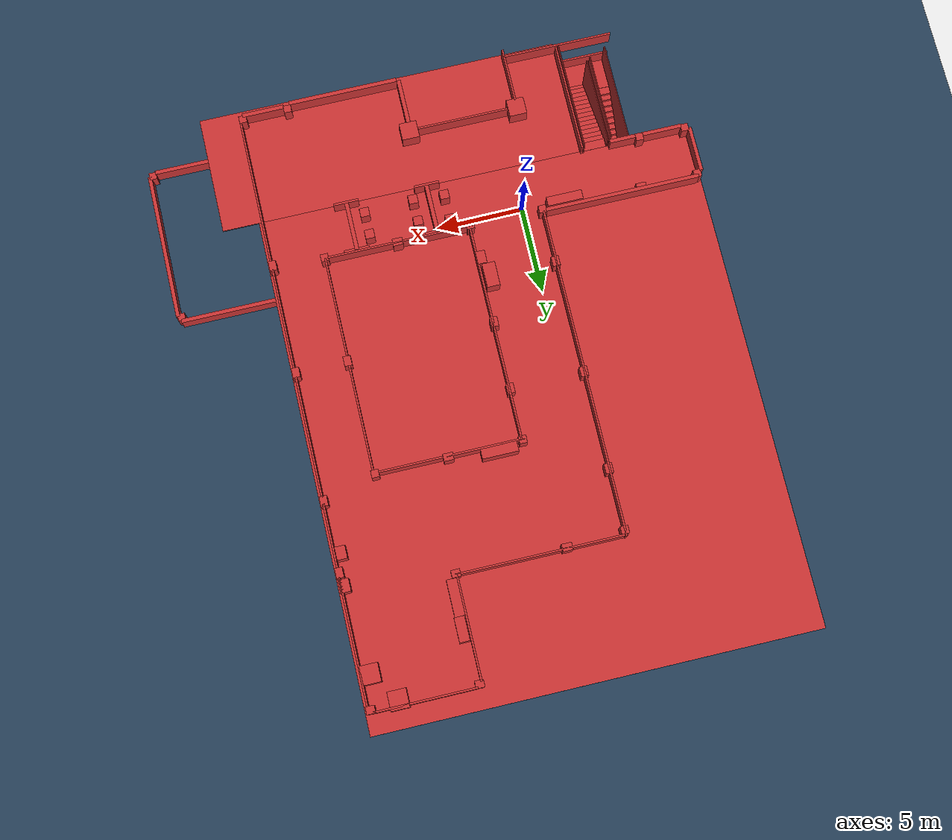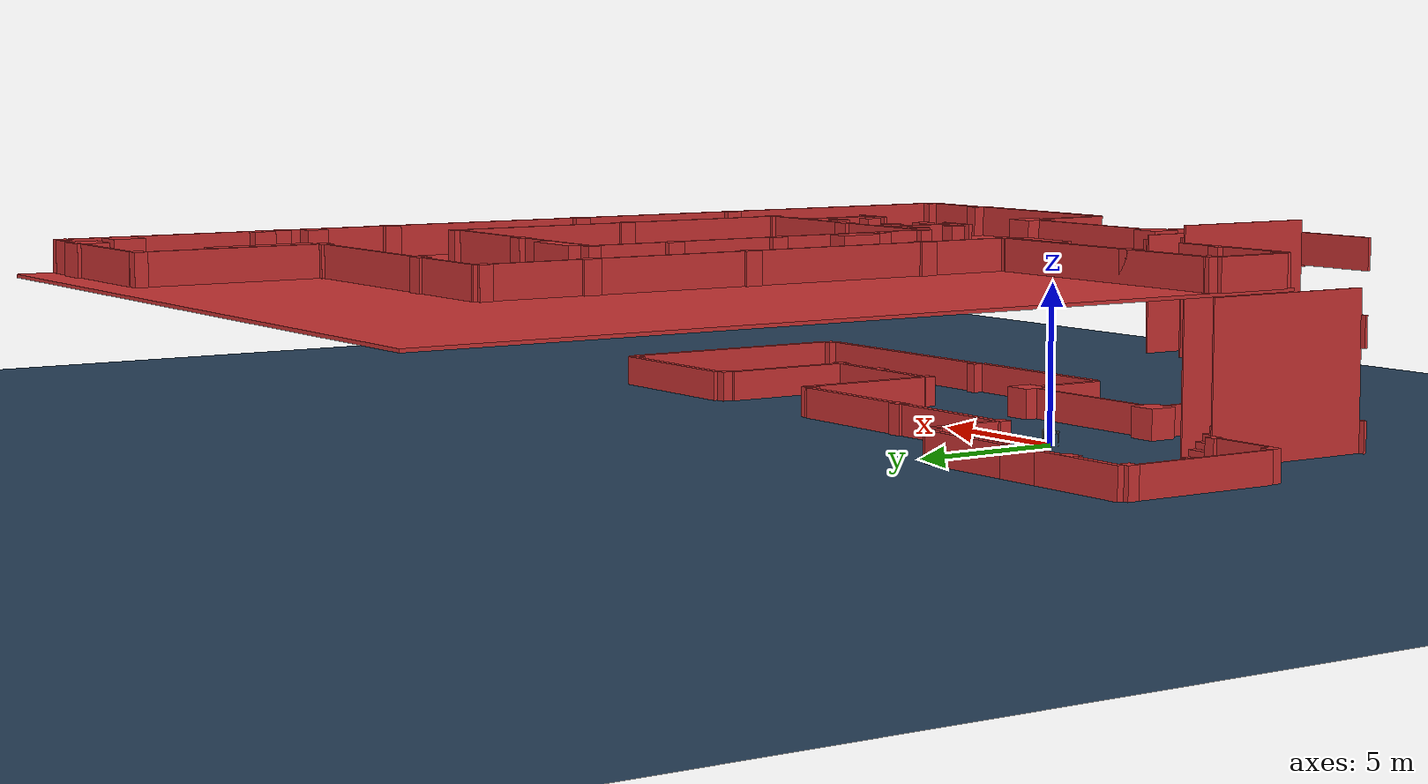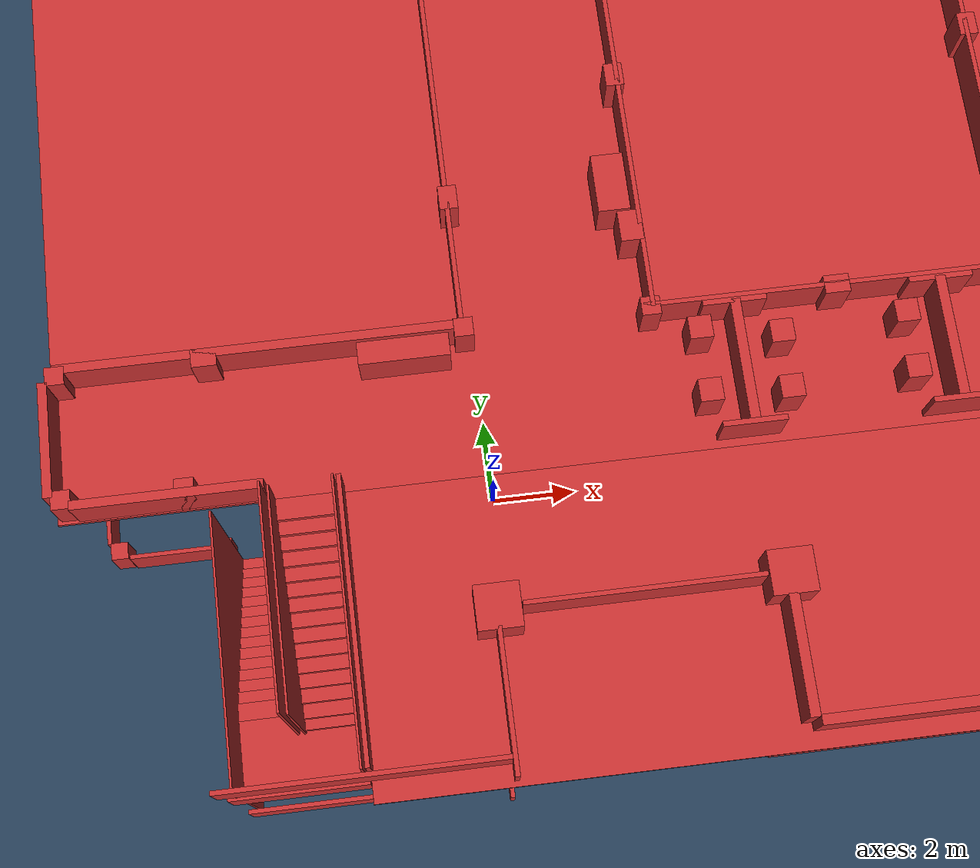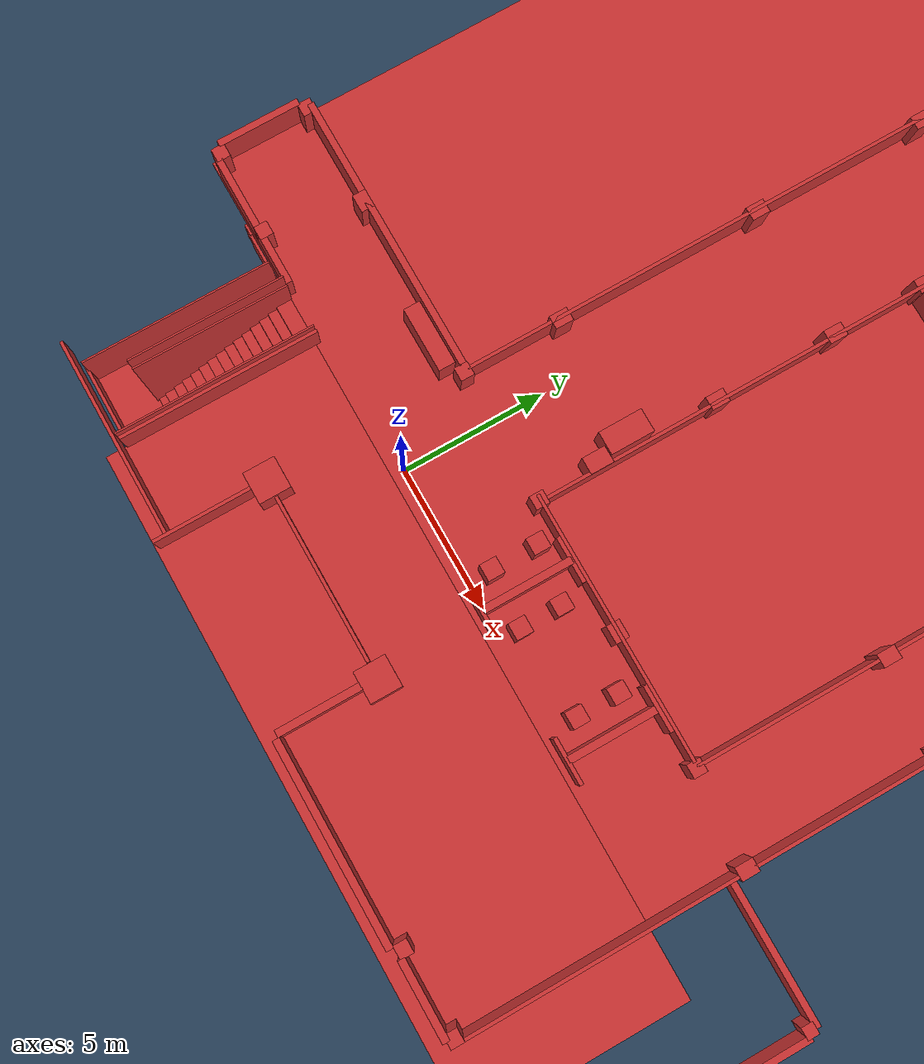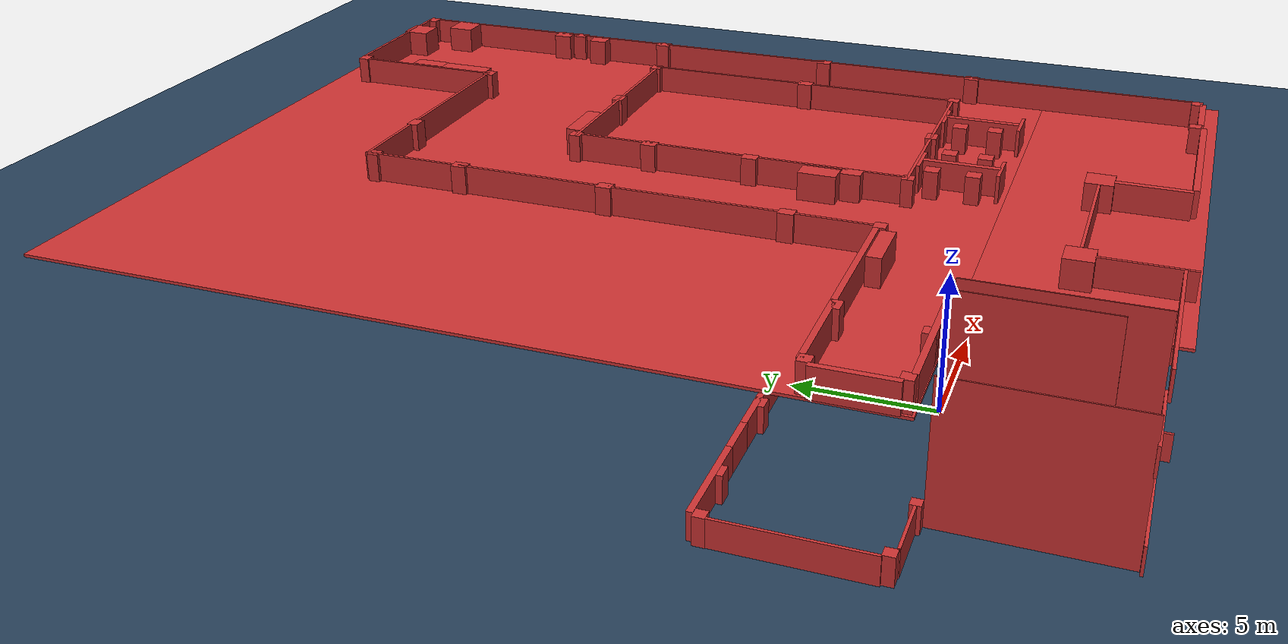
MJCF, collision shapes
<mujoco model="go2 scene">
  <include file="go2.xml" />
  <statistic center="0 0 0.1" extent="0.8" />

  <visual>
    <headlight diffuse="0.6 0.6 0.6" ambient="0.3 0.3 0.3" specular="0 0 0" />
    <rgba haze="0.15 0.25 0.35 1" />
    <global azimuth="-130" elevation="-20" />
    <map znear="0.01" zfar="100"/>
  </visual>

  <asset>
    <texture type="skybox" builtin="gradient" rgb1="0.3 0.5 0.7" rgb2="0 0 0" width="512" height="3072" />
    <texture type="2d" name="groundplane" builtin="checker" mark="edge" rgb1="0.2 0.3 0.4" rgb2="0.1 0.2 0.3" markrgb="0.8 0.8 0.8" width="300" height="300" />
    <material name="groundplane" texture="groundplane" texuniform="true" texrepeat="5 5" reflectance="0.2" />
  <hfield name="perlin_hfield" size="1.0 0.75 0.2 0.2" file="../height_field.png" /><hfield name="image_hfield" size="1.0 1.0 0.02 0.1" file="../unitree_hfield.png" /></asset>

  <worldbody>
    <light pos="0 0 1.5" dir="0 0 -1" directional="true" />
    <geom name="floor" pos="0 0.0 0.001" size="0 0 0.05" type="plane" material="groundplane" />
<geom name="phs_Cube" type="box" size="0.475 0.475 0.5" pos="-0.4 -3.8 0.5" quat="1.0 0.0 0.0 0.0" rgba="0.8 0.2 0.2 1" solref="0.02 1" solimp="0.9 0.95 0.001"/>
<geom name="phs_Cube2" type="box" size="0.475 0.475 0.5" pos="5.6 -3.8 0.5" quat="1.0 0.0 0.0 0.0" rgba="0.8 0.2 0.2 1" solref="0.02 1" solimp="0.9 0.95 0.001"/>
<geom name="phs_Cube3" type="box" size="2.5 0.05 0.5" pos="2.6 -3.8 0.5" quat="1.0 0.0 0.0 0.0" rgba="0.8 0.2 0.2 1" solref="0.02 1" solimp="0.9 0.95 0.001"/>
<geom name="phs_Cube4" type="box" size="0.05 1.5 0.5" pos="-0.43 -5.7 0.5" quat="1.0 0.0 0.0 0.0" rgba="0.8 0.2 0.2 1" solref="0.02 1" solimp="0.9 0.95 0.001"/>
<geom name="phs_Cube5" type="box" size="0.05 3.0 0.5" pos="-3.43 -6.8 0.5" quat="0.707107 0.0 0.0 0.707107" rgba="0.8 0.2 0.2 1" solref="0.02 1" solimp="0.9 0.95 0.001"/>
<geom name="phs_Cube6" type="box" size="0.025 3.0 2.5" pos="-6.22 -3.74 2.5" quat="1.0 0.0 0.0 -0.0" rgba="0.8 0.2 0.2 1" solref="0.02 1" solimp="0.9 0.95 0.001"/>
<geom name="phs_Cube7" type="box" size="0.18 0.18 0.5" pos="-6.5 -0.57 0.5" quat="1.0 0.0 0.0 0.0" rgba="0.8 0.2 0.2 1" solref="0.02 1" solimp="0.9 0.95 0.001"/>
<geom name="phs_Cube8" type="box" size="0.2 0.2 0.5" pos="-8.98 -0.39 0.5" quat="1.0 0.0 0.0 0.0" rgba="0.8 0.2 0.2 1" solref="0.02 1" solimp="0.9 0.95 0.001"/>
<geom name="phs_Cube9" type="box" size="1.05 0.05 0.5" pos="-7.7 -0.57 0.5" quat="1.0 0.0 0.0 0.0" rgba="0.8 0.2 0.2 1" solref="0.02 1" solimp="0.9 0.95 0.001"/>
<geom name="phs_Cube10" type="box" size="2.5 0.05 0.5" pos="-9.2 2.29 0.5" quat="0.707107 0.0 0.0 -0.707107" rgba="0.8 0.2 0.2 1" solref="0.02 1" solimp="0.9 0.95 0.001"/>
<geom name="phs_Cube11" type="box" size="0.2 0.2 0.5" pos="-9.07 4.98 0.5" quat="1.0 0.0 0.0 0.0" rgba="0.8 0.2 0.2 1" solref="0.02 1" solimp="0.9 0.95 0.001"/>
<geom name="phs_Cube12" type="box" size="0.27 0.2 0.5" pos="-6.89 5.18 0.5" quat="1.0 0.0 0.0 0.0" rgba="0.8 0.2 0.2 1" solref="0.02 1" solimp="0.9 0.95 0.001"/>
<geom name="phs_Cube13" type="box" size="1.75 0.11 0.5" pos="-7.35 5.3 0.5" quat="1.0 0.0 0.0 0.0" rgba="0.8 0.2 0.2 1" solref="0.02 1" solimp="0.9 0.95 0.001"/>
<geom name="phs_Cube14" type="box" size="1.75 0.11 0.5" pos="-2.45 5.3 0.5" quat="1.0 0.0 0.0 0.0" rgba="0.8 0.2 0.2 1" solref="0.02 1" solimp="0.9 0.95 0.001"/>
<geom name="phs_Cube15" type="box" size="0.27 0.2 0.5" pos="-2.9 5.18 0.5" quat="1.0 0.0 0.0 0.0" rgba="0.8 0.2 0.2 1" solref="0.02 1" solimp="0.9 0.95 0.001"/>
<geom name="phs_Cube16" type="box" size="0.2 0.2 0.5" pos="-0.51 4.98 0.5" quat="1.0 0.0 0.0 0.0" rgba="0.8 0.2 0.2 1" solref="0.02 1" solimp="0.9 0.95 0.001"/>
<geom name="phs_Cube17" type="box" size="1.25 0.11 0.5" pos="-0.3 3.65 0.5" quat="0.707107 0.0 0.0 -0.707107" rgba="0.8 0.2 0.2 1" solref="0.02 1" solimp="0.9 0.95 0.001"/>
<geom name="phs_Cube18" type="box" size="0.205 0.2 0.5" pos="-0.29 2.18 0.5" quat="1.0 0.0 0.0 0.0" rgba="0.8 0.2 0.2 1" solref="0.02 1" solimp="0.9 0.95 0.001"/>
<geom name="phs_Cube19" type="box" size="4.75 0.11 0.5" pos="4.66 2.29 0.5" quat="1.0 0.0 0.0 0.0" rgba="0.8 0.2 0.2 1" solref="0.02 1" solimp="0.9 0.95 0.001"/>
<geom name="phs_Cube20" type="box" size="0.27 0.2 0.5" pos="4.6 2.29 0.5" quat="1.0 0.0 0.0 0.0" rgba="0.8 0.2 0.2 1" solref="0.02 1" solimp="0.9 0.95 0.001"/>
<geom name="phs_Cube21" type="box" size="0.75 0.11 0.5" pos="-4.9 5.3 0.5" quat="1.0 0.0 0.0 0.0" rgba="0.8 0.2 0.2 1" solref="0.02 1" solimp="0.9 0.95 0.001"/>
<geom name="phs_Cube22" type="box" size="2.5 0.11 0.5" pos="9.69 -0.16 0.5" quat="0.707107 0.0 0.0 -0.707107" rgba="0.8 0.2 0.2 1" solref="0.02 1" solimp="0.9 0.95 0.001"/>
<geom name="phs_Cube23" type="box" size="0.205 0.2 0.5" pos="9.61 2.08 0.5" quat="1.0 0.0 0.0 0.0" rgba="0.8 0.2 0.2 1" solref="0.02 1" solimp="0.9 0.95 0.001"/>
<geom name="phs_Cube24" type="box" size="0.205 0.2 0.5" pos="9.71 -2.81 0.5" quat="1.0 0.0 0.0 0.0" rgba="0.8 0.2 0.2 1" solref="0.02 1" solimp="0.9 0.95 0.001"/>
<geom name="phs_Cube25" type="box" size="0.27 0.2 0.5" pos="12.39 -2.81 0.5" quat="1.0 0.0 0.0 0.0" rgba="0.8 0.2 0.2 1" solref="0.02 1" solimp="0.9 0.95 0.001"/>
<geom name="phs_Cube26" type="box" size="0.205 0.2 0.5" pos="14.6 -2.81 0.5" quat="1.0 0.0 0.0 0.0" rgba="0.8 0.2 0.2 1" solref="0.02 1" solimp="0.9 0.95 0.001"/>
<geom name="phs_Cube27" type="box" size="0.205 0.2 0.5" pos="14.7 2.06 0.5" quat="1.0 0.0 0.0 0.0" rgba="0.8 0.2 0.2 1" solref="0.02 1" solimp="0.9 0.95 0.001"/>
<geom name="phs_Cube28" type="box" size="0.205 0.2 0.5" pos="20.3 2.06 0.5" quat="1.0 0.0 0.0 0.0" rgba="0.8 0.2 0.2 1" solref="0.02 1" solimp="0.9 0.95 0.001"/>
<geom name="phs_Cube29" type="box" size="0.205 0.2 0.5" pos="20.3 -6.53 0.5" quat="1.0 0.0 0.0 0.0" rgba="0.8 0.2 0.2 1" solref="0.02 1" solimp="0.9 0.95 0.001"/>
<geom name="phs_Cube30" type="box" size="0.205 0.2 0.5" pos="11.8 -6.58 0.5" quat="1.0 0.0 0.0 0.0" rgba="0.8 0.2 0.2 1" solref="0.02 1" solimp="0.9 0.95 0.001"/>
<geom name="phs_Cube31" type="box" size="2.25 0.11 0.5" pos="12.15 -2.71 0.5" quat="1.0 0.0 0.0 0.0" rgba="0.8 0.2 0.2 1" solref="0.02 1" solimp="0.9 0.95 0.001"/>
<geom name="phs_Cube32" type="box" size="2.25 0.11 0.5" pos="14.5 -0.37 0.5" quat="0.707107 0.0 0.0 0.707107" rgba="0.8 0.2 0.2 1" solref="0.02 1" solimp="0.9 0.95 0.001"/>
<geom name="phs_Cube33" type="box" size="2.75 0.11 0.5" pos="17.6 2.3 0.5" quat="1.0 0.0 0.0 -0.0" rgba="0.8 0.2 0.2 1" solref="0.02 1" solimp="0.9 0.95 0.001"/>
<geom name="phs_Cube34" type="box" size="4.25 0.11 0.5" pos="20.49 -2.25 0.5" quat="0.707107 0.0 0.0 -0.707107" rgba="0.8 0.2 0.2 1" solref="0.02 1" solimp="0.9 0.95 0.001"/>
<geom name="phs_Cube35" type="box" size="4.25 0.11 0.5" pos="15.89 -6.7 0.5" quat="0.0 0.0 0.0 -1.0" rgba="0.8 0.2 0.2 1" solref="0.02 1" solimp="0.9 0.95 0.001"/>
<geom name="phs_Cube36" type="box" size="3.0 0.11 0.5" pos="8.65 -6.83 0.5" quat="0.0 0.0 0.0 -1.0" rgba="0.8 0.2 0.2 1" solref="0.02 1" solimp="0.9 0.95 0.001"/>
<geom name="phs_Cube37" type="box" size="1.25 0.11 0.5" pos="5.54 -5.51 0.5" quat="0.707107 0.0 0.0 0.707107" rgba="0.8 0.2 0.2 1" solref="0.02 1" solimp="0.9 0.95 0.001"/>
<geom name="phs_Cube38" type="box" size="0.025 2.35 3.5" pos="-4.92 -3.13 3.5" quat="1.0 0.0 0.0 0.0" rgba="0.8 0.2 0.2 1" solref="0.02 1" solimp="0.9 0.95 0.001"/>
<geom name="phs_Cube39" type="box" size="0.025 2.35 1.75" pos="-4.78 -3.13 4.89" quat="1.0 0.0 0.0 0.0" rgba="0.8 0.2 0.2 1" solref="0.02 1" solimp="0.9 0.95 0.001"/>
<geom name="phs_Cube40" type="box" size="0.025 3.0 1.75" pos="-3.45 -3.7 4.89" quat="1.0 0.0 0.0 0.0" rgba="0.8 0.2 0.2 1" solref="0.02 1" solimp="0.9 0.95 0.001"/>
<geom name="phs_Cube41" type="box" size="0.05 1.5 0.5" pos="-4.93 -6.75 3.68" quat="0.707107 0.0 0.0 0.707107" rgba="0.8 0.2 0.2 1" solref="0.02 1" solimp="0.9 0.95 0.001"/>
<geom name="phs_Cube42" type="box" size="0.475 0.475 0.5" pos="-0.4 -3.8 6.0" quat="1.0 0.0 0.0 0.0" rgba="0.8 0.2 0.2 1" solref="0.02 1" solimp="0.9 0.95 0.001"/>
<geom name="phs_Cube43" type="box" size="0.475 0.475 0.5" pos="5.6 -3.8 6.0" quat="1.0 0.0 0.0 0.0" rgba="0.8 0.2 0.2 1" solref="0.02 1" solimp="0.9 0.95 0.001"/>
<geom name="phs_Cube44" type="box" size="2.5 0.05 0.5" pos="2.6 -3.8 6.0" quat="1.0 0.0 0.0 0.0" rgba="0.8 0.2 0.2 1" solref="0.02 1" solimp="0.9 0.95 0.001"/>
<geom name="phs_Cube45" type="box" size="0.05 1.5 0.5" pos="-0.43 -5.7 6.0" quat="1.0 0.0 0.0 0.0" rgba="0.8 0.2 0.2 1" solref="0.02 1" solimp="0.9 0.95 0.001"/>
<geom name="phs_Cube46" type="box" size="0.05 3.0 0.5" pos="-3.43 -6.8 6.0" quat="0.707107 0.0 0.0 0.707107" rgba="0.8 0.2 0.2 1" solref="0.02 1" solimp="0.9 0.95 0.001"/>
<geom name="phs_Cube47" type="box" size="0.205 0.2 0.5" pos="11.8 -6.53 6.0" quat="1.0 0.0 0.0 0.0" rgba="0.8 0.2 0.2 1" solref="0.02 1" solimp="0.9 0.95 0.001"/>
<geom name="phs_Cube48" type="box" size="1.15 0.11 0.5" pos="13.13 -6.7 6.0" quat="0.0 0.0 0.0 -1.0" rgba="0.8 0.2 0.2 1" solref="0.02 1" solimp="0.9 0.95 0.001"/>
<geom name="phs_Cube49" type="box" size="3.0 0.11 0.5" pos="8.65 -6.83 6.0" quat="0.0 0.0 0.0 -1.0" rgba="0.8 0.2 0.2 1" solref="0.02 1" solimp="0.9 0.95 0.001"/>
<geom name="phs_Cube50" type="box" size="1.25 0.11 0.5" pos="5.54 -5.51 6.0" quat="0.707107 0.0 0.0 0.707107" rgba="0.8 0.2 0.2 1" solref="0.02 1" solimp="0.9 0.95 0.001"/>
<geom name="phs_Cube51" type="box" size="0.205 0.2 0.5" pos="14.29 -6.49 6.0" quat="1.0 0.0 0.0 0.0" rgba="0.8 0.2 0.2 1" solref="0.02 1" solimp="0.9 0.95 0.001"/>
<geom name="phs_Cube52" type="box" size="0.205 0.2 0.5" pos="-6.5 -0.59 6.0" quat="1.0 0.0 0.0 0.0" rgba="0.8 0.2 0.2 1" solref="0.02 1" solimp="0.9 0.95 0.001"/>
<geom name="phs_Cube53" type="box" size="0.205 0.2 0.5" pos="-9.03 -0.55 6.0" quat="1.0 0.0 0.0 0.0" rgba="0.8 0.2 0.2 1" solref="0.02 1" solimp="0.9 0.95 0.001"/>
<geom name="phs_Cube54" type="box" size="0.205 0.2 0.5" pos="-9.03 2.14 6.0" quat="1.0 0.0 0.0 0.0" rgba="0.8 0.2 0.2 1" solref="0.02 1" solimp="0.9 0.95 0.001"/>
<geom name="phs_Cube55" type="box" size="0.1 1.25 0.5" pos="-9.29 0.77 6.0" quat="1.0 0.0 0.0 0.0" rgba="0.8 0.2 0.2 1" solref="0.02 1" solimp="0.9 0.95 0.001"/>
<geom name="phs_Cube56" type="box" size="0.1 4.25 0.5" pos="-4.82 2.28 6.0" quat="0.707107 0.0 0.0 -0.707107" rgba="0.8 0.2 0.2 1" solref="0.02 1" solimp="0.9 0.95 0.001"/>
<geom name="phs_Cube57" type="box" size="0.27 0.2 0.5" pos="-5.9 2.18 6.0" quat="1.0 0.0 0.0 0.0" rgba="0.8 0.2 0.2 1" solref="0.02 1" solimp="0.9 0.95 0.001"/>
<geom name="phs_Cube58" type="box" size="0.205 0.205 0.5" pos="-0.4 2.2 6.0" quat="1.0 0.0 0.0 0.0" rgba="0.8 0.2 0.2 1" solref="0.02 1" solimp="0.9 0.95 0.001"/>
<geom name="phs_Cube59" type="box" size="0.05 3.0 0.5" pos="-3.33 -3.68 6.0" quat="1.0 0.0 0.0 0.0" rgba="0.8 0.2 0.2 1" solref="0.02 1" solimp="0.9 0.95 0.001"/>
<geom name="phs_Cube60" type="box" size="0.1 2.0 0.5" pos="-6.87 -0.69 6.0" quat="0.707107 0.0 0.0 0.707107" rgba="0.8 0.2 0.2 1" solref="0.02 1" solimp="0.9 0.95 0.001"/>
<geom name="phs_Cube61" type="box" size="0.27 0.2 0.5" pos="-0.39 5.2 6.0" quat="0.707107 0.0 0.0 0.707107" rgba="0.8 0.2 0.2 1" solref="0.02 1" solimp="0.9 0.95 0.001"/>
<geom name="phs_Cube62" type="box" size="0.27 0.2 0.5" pos="-0.39 11.4 6.0" quat="0.707107 0.0 0.0 0.707107" rgba="0.8 0.2 0.2 1" solref="0.02 1" solimp="0.9 0.95 0.001"/>
<geom name="phs_Cube63" type="box" size="0.27 0.2 0.5" pos="-0.39 16.7 6.0" quat="0.707107 0.0 0.0 0.707107" rgba="0.8 0.2 0.2 1" solref="0.02 1" solimp="0.9 0.95 0.001"/>
<geom name="phs_Cube64" type="box" size="0.205 0.205 0.5" pos="3.6 2.2 6.0" quat="1.0 0.0 0.0 0.0" rgba="0.8 0.2 0.2 1" solref="0.02 1" solimp="0.9 0.95 0.001"/>
<geom name="phs_Cube65" type="box" size="0.27 0.2 0.5" pos="3.59 7.7 6.0" quat="0.707107 0.0 0.0 0.707107" rgba="0.8 0.2 0.2 1" solref="0.02 1" solimp="0.9 0.95 0.001"/>
<geom name="phs_Cube66" type="box" size="0.27 0.2 0.5" pos="3.59 11.4 6.0" quat="0.707107 0.0 0.0 0.707107" rgba="0.8 0.2 0.2 1" solref="0.02 1" solimp="0.9 0.95 0.001"/>
<geom name="phs_Cube67" type="box" size="0.27 0.2 0.5" pos="2.7 20.18 6.0" quat="0.0 0.0 0.0 1.0" rgba="0.8 0.2 0.2 1" solref="0.02 1" solimp="0.9 0.95 0.001"/>
<geom name="phs_Cube68" type="box" size="0.205 0.205 0.5" pos="3.6 14.2 6.0" quat="1.0 0.0 0.0 0.0" rgba="0.8 0.2 0.2 1" solref="0.02 1" solimp="0.9 0.95 0.001"/>
<geom name="phs_Cube69" type="box" size="0.205 0.205 0.5" pos="-0.4 20.0 6.0" quat="1.0 0.0 0.0 0.0" rgba="0.8 0.2 0.2 1" solref="0.02 1" solimp="0.9 0.95 0.001"/>
<geom name="phs_Cube70" type="box" size="0.235 0.2 0.5" pos="8.58 20.19 6.0" quat="1.0 0.0 0.0 0.0" rgba="0.8 0.2 0.2 1" solref="0.02 1" solimp="0.9 0.95 0.001"/>
<geom name="phs_Cube71" type="box" size="0.27 0.2 0.5" pos="7.59 14.21 6.0" quat="0.0 0.0 0.0 1.0" rgba="0.8 0.2 0.2 1" solref="0.02 1" solimp="0.9 0.95 0.001"/>
<geom name="phs_Cube72" type="box" size="0.205 0.205 0.5" pos="11.5 14.2 6.0" quat="1.0 0.0 0.0 0.0" rgba="0.8 0.2 0.2 1" solref="0.02 1" solimp="0.9 0.95 0.001"/>
<geom name="phs_Cube73" type="box" size="0.235 0.2 0.5" pos="8.67 25.89 6.0" quat="1.0 0.0 0.0 0.0" rgba="0.8 0.2 0.2 1" solref="0.02 1" solimp="0.9 0.95 0.001"/>
<geom name="phs_Cube74" type="box" size="0.27 0.2 0.5" pos="11.61 8.01 6.0" quat="0.707107 0.0 0.0 0.707107" rgba="0.8 0.2 0.2 1" solref="0.02 1" solimp="0.9 0.95 0.001"/>
<geom name="phs_Cube75" type="box" size="0.27 0.2 0.5" pos="14.39 2.0 6.0" quat="0.707107 0.0 0.0 0.707107" rgba="0.8 0.2 0.2 1" solref="0.02 1" solimp="0.9 0.95 0.001"/>
<geom name="phs_Cube76" type="box" size="0.27 0.2 0.5" pos="14.39 8.01 6.0" quat="0.707107 0.0 0.0 0.707107" rgba="0.8 0.2 0.2 1" solref="0.02 1" solimp="0.9 0.95 0.001"/>
<geom name="phs_Cube77" type="box" size="0.27 0.2 0.5" pos="7.6 2.22 6.0" quat="1.0 0.0 0.0 0.0" rgba="0.8 0.2 0.2 1" solref="0.02 1" solimp="0.9 0.95 0.001"/>
<geom name="phs_Cube78" type="box" size="0.205 0.205 0.5" pos="11.6 2.2 6.0" quat="1.0 0.0 0.0 0.0" rgba="0.8 0.2 0.2 1" solref="0.02 1" solimp="0.9 0.95 0.001"/>
<geom name="phs_Cube79" type="box" size="0.27 0.2 0.5" pos="14.39 15.0 6.0" quat="0.707107 0.0 0.0 0.707107" rgba="0.8 0.2 0.2 1" solref="0.02 1" solimp="0.9 0.95 0.001"/>
<geom name="phs_Cube80" type="box" size="0.27 0.2 0.5" pos="14.39 18.8 6.0" quat="0.707107 0.0 0.0 0.707107" rgba="0.8 0.2 0.2 1" solref="0.02 1" solimp="0.9 0.95 0.001"/>
<geom name="phs_Cube81" type="box" size="6.0 0.05 0.5" pos="3.65 8.19 6.0" quat="0.707107 0.0 0.0 -0.707107" rgba="0.8 0.2 0.2 1" solref="0.02 1" solimp="0.9 0.95 0.001"/>
<geom name="phs_Cube82" type="box" size="9.0 0.05 0.5" pos="-0.43 11.33 6.0" quat="0.707107 0.0 0.0 -0.707107" rgba="0.8 0.2 0.2 1" solref="0.02 1" solimp="0.9 0.95 0.001"/>
<geom name="phs_Cube83" type="box" size="4.0 0.05 0.5" pos="7.45 14.16 6.0" quat="0.0 0.0 0.0 -1.0" rgba="0.8 0.2 0.2 1" solref="0.02 1" solimp="0.9 0.95 0.001"/>
<geom name="phs_Cube84" type="box" size="4.5 0.05 0.5" pos="4.14 20.25 6.0" quat="0.0 0.0 0.0 -1.0" rgba="0.8 0.2 0.2 1" solref="0.02 1" solimp="0.9 0.95 0.001"/>
<geom name="phs_Cube85" type="box" size="2.75 0.05 0.5" pos="8.55 23.05 6.0" quat="0.707107 0.0 0.0 -0.707107" rgba="0.8 0.2 0.2 1" solref="0.02 1" solimp="0.9 0.95 0.001"/>
<geom name="phs_Cube86" type="box" size="0.235 0.2 0.5" pos="14.32 25.89 6.0" quat="1.0 0.0 0.0 0.0" rgba="0.8 0.2 0.2 1" solref="0.02 1" solimp="0.9 0.95 0.001"/>
<geom name="phs_Cube87" type="box" size="2.75 0.05 0.5" pos="11.55 26.05 6.0" quat="0.0 0.0 0.0 -1.0" rgba="0.8 0.2 0.2 1" solref="0.02 1" solimp="0.9 0.95 0.001"/>
<geom name="phs_Cube88" type="box" size="16.0 0.05 0.5" pos="14.44 9.72 6.0" quat="0.707107 0.0 0.0 -0.707107" rgba="0.8 0.2 0.2 1" solref="0.02 1" solimp="0.9 0.95 0.001"/>
<geom name="phs_Cube89" type="box" size="6.0 0.05 0.5" pos="11.57 8.23 6.0" quat="0.707107 0.0 0.0 -0.707107" rgba="0.8 0.2 0.2 1" solref="0.02 1" solimp="0.9 0.95 0.001"/>
<geom name="phs_Cube90" type="box" size="4.0 0.05 0.5" pos="7.45 2.23 6.0" quat="0.0 0.0 0.0 -1.0" rgba="0.8 0.2 0.2 1" solref="0.02 1" solimp="0.9 0.95 0.001"/>
<geom name="phs_Cube91" type="box" size="10.0 0.05 3.25" pos="6.67 -4.07 5.46" quat="0.707107 -0.707107 0.0 0.0" rgba="0.8 0.2 0.2 1" solref="0.02 1" solimp="0.9 0.95 0.001"/>
<geom name="phs_Cube92" type="box" size="12.0 0.05 14.0" pos="2.67 13.18 5.46" quat="0.707107 -0.707107 0.0 0.0" rgba="0.8 0.2 0.2 1" solref="0.02 1" solimp="0.9 0.95 0.001"/>
<geom name="phs_Cube93" type="box" size="0.975 0.25 0.5" pos="-1.71 1.87 6.0" quat="1.0 0.0 0.0 0.0" rgba="0.8 0.2 0.2 1" solref="0.02 1" solimp="0.9 0.95 0.001"/>
<geom name="phs_Cube94" type="box" size="0.66 0.35 0.5" pos="3.15 5.13 6.0" quat="0.707107 0.0 0.0 -0.707107" rgba="0.8 0.2 0.2 1" solref="0.02 1" solimp="0.9 0.95 0.001"/>
<geom name="phs_Cube95" type="box" size="0.35 0.25 0.5" pos="3.44 4.08 6.0" quat="0.707107 0.0 0.0 -0.707107" rgba="0.8 0.2 0.2 1" solref="0.02 1" solimp="0.9 0.95 0.001"/>
<geom name="phs_Cube96" type="box" size="0.975 0.275 0.5" pos="4.91 14.47 6.0" quat="0.0 0.0 0.0 -1.0" rgba="0.8 0.2 0.2 1" solref="0.02 1" solimp="0.9 0.95 0.001"/>
<geom name="phs_Cube97" type="box" size="0.975 0.275 0.5" pos="8.87 21.39 6.0" quat="0.707107 0.0 0.0 -0.707107" rgba="0.8 0.2 0.2 1" solref="0.02 1" solimp="0.9 0.95 0.001"/>
<geom name="phs_Cube98" type="box" size="0.65 0.275 0.5" pos="8.92 23.02 6.0" quat="0.707107 0.0 0.0 -0.707107" rgba="0.8 0.2 0.2 1" solref="0.02 1" solimp="0.9 0.95 0.001"/>
<geom name="phs_Cube99" type="box" size="0.35 0.275 0.5" pos="14.27 19.5 6.0" quat="0.707107 0.0 0.0 -0.707107" rgba="0.8 0.2 0.2 1" solref="0.02 1" solimp="0.9 0.95 0.001"/>
<geom name="phs_Cube100" type="box" size="0.35 0.275 0.5" pos="14.09 17.81 6.0" quat="0.707107 0.0 0.0 -0.707107" rgba="0.8 0.2 0.2 1" solref="0.02 1" solimp="0.9 0.95 0.001"/>
<geom name="phs_Cube101" type="box" size="0.5 0.5 0.5" pos="13.96 24.14 6.0" quat="0.707107 0.0 0.0 -0.707107" rgba="0.8 0.2 0.2 1" solref="0.02 1" solimp="0.9 0.95 0.001"/>
<geom name="phs_Cube102" type="box" size="0.5 0.5 0.5" pos="12.84 25.71 6.0" quat="0.707107 0.0 0.0 -0.707107" rgba="0.8 0.2 0.2 1" solref="0.02 1" solimp="0.9 0.95 0.001"/>
<geom name="phs_Cube103" type="box" size="1.35 0.11 0.5" pos="5.39 0.79 6.0" quat="0.707107 0.0 0.0 -0.707107" rgba="0.8 0.2 0.2 1" solref="0.02 1" solimp="0.9 0.95 0.001"/>
<geom name="phs_Cube104" type="box" size="0.685 0.06 0.5" pos="5.38 2.12 6.0" quat="1.0 0.0 0.0 0.0" rgba="0.8 0.2 0.2 1" solref="0.02 1" solimp="0.9 0.95 0.001"/>
<geom name="phs_Cube105" type="box" size="0.685 0.06 0.5" pos="9.83 -0.58 6.0" quat="1.0 0.0 0.0 0.0" rgba="0.8 0.2 0.2 1" solref="0.02 1" solimp="0.9 0.95 0.001"/>
<geom name="phs_Cube106" type="box" size="0.685 0.06 0.5" pos="9.82 2.12 6.0" quat="1.0 0.0 0.0 0.0" rgba="0.8 0.2 0.2 1" solref="0.02 1" solimp="0.9 0.95 0.001"/>
<geom name="phs_Cube107" type="box" size="1.35 0.11 0.5" pos="9.81 0.79 6.0" quat="0.707107 0.0 0.0 -0.707107" rgba="0.8 0.2 0.2 1" solref="0.02 1" solimp="0.9 0.95 0.001"/>
<geom name="phs_Cube108" type="box" size="0.25 0.25 0.5" pos="4.57 1.6 6.0" quat="1.0 0.0 0.0 0.0" rgba="0.8 0.2 0.2 1" solref="0.02 1" solimp="0.9 0.95 0.001"/>
<geom name="phs_Cube109" type="box" size="0.25 0.25 0.5" pos="4.57 0.2 6.0" quat="1.0 0.0 0.0 0.0" rgba="0.8 0.2 0.2 1" solref="0.02 1" solimp="0.9 0.95 0.001"/>
<geom name="phs_Cube110" type="box" size="0.25 0.25 0.5" pos="8.97 0.2 6.0" quat="1.0 0.0 0.0 0.0" rgba="0.8 0.2 0.2 1" solref="0.02 1" solimp="0.9 0.95 0.001"/>
<geom name="phs_Cube111" type="box" size="0.25 0.25 0.5" pos="8.97 1.45 6.0" quat="1.0 0.0 0.0 0.0" rgba="0.8 0.2 0.2 1" solref="0.02 1" solimp="0.9 0.95 0.001"/>
<geom name="phs_Cube112" type="box" size="0.25 0.25 0.5" pos="6.27 0.08 6.0" quat="1.0 0.0 0.0 0.0" rgba="0.8 0.2 0.2 1" solref="0.02 1" solimp="0.9 0.95 0.001"/>
<geom name="phs_Cube113" type="box" size="0.25 0.25 0.5" pos="6.27 1.32 6.0" quat="1.0 0.0 0.0 0.0" rgba="0.8 0.2 0.2 1" solref="0.02 1" solimp="0.9 0.95 0.001"/>
<geom name="phs_Cube114" type="box" size="0.65 0.2 0.105" pos="-5.57 -0.96 0.1" quat="1.0 0.0 0.0 0.0" rgba="0.8 0.2 0.2 1" solref="0.02 1" solimp="0.9 0.95 0.001"/>
<geom name="phs_Cube115" type="box" size="0.65 0.2 0.105" pos="-5.57 -1.25 0.32" quat="1.0 0.0 0.0 0.0" rgba="0.8 0.2 0.2 1" solref="0.02 1" solimp="0.9 0.95 0.001"/>
<geom name="phs_Cube116" type="box" size="0.65 0.2 0.105" pos="-5.57 -1.52 0.53" quat="1.0 0.0 0.0 0.0" rgba="0.8 0.2 0.2 1" solref="0.02 1" solimp="0.9 0.95 0.001"/>
<geom name="phs_Cube117" type="box" size="0.65 0.2 0.105" pos="-5.57 -1.8 0.74" quat="1.0 0.0 0.0 0.0" rgba="0.8 0.2 0.2 1" solref="0.02 1" solimp="0.9 0.95 0.001"/>
<geom name="phs_Cube118" type="box" size="0.65 0.2 0.105" pos="-5.57 -2.07 0.95" quat="1.0 0.0 0.0 0.0" rgba="0.8 0.2 0.2 1" solref="0.02 1" solimp="0.9 0.95 0.001"/>
<geom name="phs_Cube119" type="box" size="0.65 0.2 0.105" pos="-5.57 -2.35 1.17" quat="1.0 0.0 0.0 0.0" rgba="0.8 0.2 0.2 1" solref="0.02 1" solimp="0.9 0.95 0.001"/>
<geom name="phs_Cube120" type="box" size="0.65 0.2 0.105" pos="-5.57 -2.63 1.38" quat="1.0 0.0 0.0 0.0" rgba="0.8 0.2 0.2 1" solref="0.02 1" solimp="0.9 0.95 0.001"/>
<geom name="phs_Cube121" type="box" size="0.65 0.2 0.105" pos="-5.57 -2.91 1.59" quat="1.0 0.0 0.0 0.0" rgba="0.8 0.2 0.2 1" solref="0.02 1" solimp="0.9 0.95 0.001"/>
<geom name="phs_Cube122" type="box" size="0.65 0.2 0.105" pos="-5.57 -3.18 1.8" quat="1.0 0.0 0.0 0.0" rgba="0.8 0.2 0.2 1" solref="0.02 1" solimp="0.9 0.95 0.001"/>
<geom name="phs_Cube123" type="box" size="0.65 0.2 0.105" pos="-5.57 -3.46 2.02" quat="1.0 0.0 0.0 0.0" rgba="0.8 0.2 0.2 1" solref="0.02 1" solimp="0.9 0.95 0.001"/>
<geom name="phs_Cube124" type="box" size="0.65 0.2 0.105" pos="-5.57 -3.74 2.23" quat="1.0 0.0 0.0 0.0" rgba="0.8 0.2 0.2 1" solref="0.02 1" solimp="0.9 0.95 0.001"/>
<geom name="phs_Cube125" type="box" size="0.65 0.2 0.105" pos="-5.57 -4.02 2.44" quat="1.0 0.0 0.0 0.0" rgba="0.8 0.2 0.2 1" solref="0.02 1" solimp="0.9 0.95 0.001"/>
<geom name="phs_Cube126" type="box" size="0.65 0.2 0.105" pos="-5.57 -4.29 2.65" quat="1.0 0.0 0.0 0.0" rgba="0.8 0.2 0.2 1" solref="0.02 1" solimp="0.9 0.95 0.001"/>
<geom name="phs_Cube127" type="box" size="0.65 0.2 0.105" pos="-5.57 -4.57 2.86" quat="1.0 0.0 0.0 0.0" rgba="0.8 0.2 0.2 1" solref="0.02 1" solimp="0.9 0.95 0.001"/>
<geom name="phs_Cube128" type="box" size="0.65 0.2 0.105" pos="-5.57 -4.85 3.075" quat="1.0 0.0 0.0 0.0" rgba="0.8 0.2 0.2 1" solref="0.02 1" solimp="0.9 0.95 0.001"/>
<geom name="phs_Cube129" type="box" size="1.4 0.85 0.105" pos="-4.84 -5.89 3.11" quat="1.0 0.0 0.0 0.0" rgba="0.8 0.2 0.2 1" solref="0.02 1" solimp="0.9 0.95 0.001"/>
<geom name="phs_Cube130" type="box" size="0.65 0.2 0.105" pos="-4.12 -5.22 3.27" quat="1.0 0.0 0.0 0.0" rgba="0.8 0.2 0.2 1" solref="0.02 1" solimp="0.9 0.95 0.001"/>
<geom name="phs_Cube131" type="box" size="0.65 0.2 0.105" pos="-4.12 -4.99 3.42" quat="1.0 0.0 0.0 0.0" rgba="0.8 0.2 0.2 1" solref="0.02 1" solimp="0.9 0.95 0.001"/>
<geom name="phs_Cube132" type="box" size="0.65 0.2 0.105" pos="-4.12 -4.68 3.58" quat="1.0 0.0 0.0 0.0" rgba="0.8 0.2 0.2 1" solref="0.02 1" solimp="0.9 0.95 0.001"/>
<geom name="phs_Cube133" type="box" size="0.65 0.2 0.105" pos="-4.12 -4.38 3.73" quat="1.0 0.0 0.0 0.0" rgba="0.8 0.2 0.2 1" solref="0.02 1" solimp="0.9 0.95 0.001"/>
<geom name="phs_Cube134" type="box" size="0.65 0.2 0.105" pos="-4.12 -4.08 3.88" quat="1.0 0.0 0.0 0.0" rgba="0.8 0.2 0.2 1" solref="0.02 1" solimp="0.9 0.95 0.001"/>
<geom name="phs_Cube135" type="box" size="0.65 0.2 0.105" pos="-4.12 -3.775 4.04" quat="1.0 0.0 0.0 0.0" rgba="0.8 0.2 0.2 1" solref="0.02 1" solimp="0.9 0.95 0.001"/>
<geom name="phs_Cube136" type="box" size="0.65 0.2 0.105" pos="-4.12 -3.475 4.19" quat="1.0 0.0 0.0 0.0" rgba="0.8 0.2 0.2 1" solref="0.02 1" solimp="0.9 0.95 0.001"/>
<geom name="phs_Cube137" type="box" size="0.65 0.2 0.105" pos="-4.12 -3.175 4.34" quat="1.0 0.0 0.0 0.0" rgba="0.8 0.2 0.2 1" solref="0.02 1" solimp="0.9 0.95 0.001"/>
<geom name="phs_Cube138" type="box" size="0.65 0.2 0.105" pos="-4.12 -2.865 4.5" quat="1.0 0.0 0.0 0.0" rgba="0.8 0.2 0.2 1" solref="0.02 1" solimp="0.9 0.95 0.001"/>
<geom name="phs_Cube139" type="box" size="0.65 0.2 0.105" pos="-4.12 -2.57 4.65" quat="1.0 0.0 0.0 0.0" rgba="0.8 0.2 0.2 1" solref="0.02 1" solimp="0.9 0.95 0.001"/>
<geom name="phs_Cube140" type="box" size="0.65 0.2 0.105" pos="-4.12 -2.268 4.8" quat="1.0 0.0 0.0 0.0" rgba="0.8 0.2 0.2 1" solref="0.02 1" solimp="0.9 0.95 0.001"/>
<geom name="phs_Cube141" type="box" size="0.65 0.2 0.105" pos="-4.12 -1.97 4.955" quat="1.0 0.0 0.0 0.0" rgba="0.8 0.2 0.2 1" solref="0.02 1" solimp="0.9 0.95 0.001"/>
<geom name="phs_Cube142" type="box" size="0.65 0.2 0.105" pos="-4.12 -1.66 5.11" quat="1.0 0.0 0.0 0.0" rgba="0.8 0.2 0.2 1" solref="0.02 1" solimp="0.9 0.95 0.001"/>
<geom name="phs_Cube143" type="box" size="0.65 0.2 0.105" pos="-4.12 -1.36 5.265" quat="1.0 0.0 0.0 0.0" rgba="0.8 0.2 0.2 1" solref="0.02 1" solimp="0.9 0.95 0.001"/>
<geom name="phs_Cube144" type="box" size="0.65 0.235 0.105" pos="-4.12 -1.03 5.415" quat="1.0 0.0 0.0 0.0" rgba="0.8 0.2 0.2 1" solref="0.02 1" solimp="0.9 0.95 0.001"/>
<geom name="phs_Cube145" type="box" size="0.685 0.06 0.5" pos="5.38 -0.58 6.0" quat="1.0 0.0 0.0 0.0" rgba="0.8 0.2 0.2 1" solref="0.02 1" solimp="0.9 0.95 0.001"/>
    </worldbody>
</mujoco>

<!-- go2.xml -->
<mujoco model="go2">
  <compiler angle="radian" meshdir="assets" autolimits="true" />

  <option cone="elliptic" impratio="100" />

  <default>
    <default class="go2">
      <geom friction="0.4" margin="0.001" condim="1"/>
      <joint axis="0 1 0" damping="0.1" armature="0.01" frictionloss="0.2"/>
      <motor ctrlrange="-23.7 23.7"/>
      <default class="abduction">
        <joint axis="1 0 0" range="-1.0472 1.0472"/>
      </default>
      <default class="hip">
        <default class="front_hip">
          <joint range="-1.5708 3.4907"/>
        </default>
        <default class="back_hip">
          <joint range="-0.5236 4.5379"/>
        </default>
      </default>
      <default class="knee">
        <joint range="-2.7227 -0.83776"/>
        <motor ctrlrange="-45.43 45.43"/>
      </default>
      <default class="visual">
        <geom type="mesh" contype="0" conaffinity="0" group="2"/>
      </default>
      <default class="collision">
        <geom group="3"/>
        <default class="foot">
          <geom size="0.022" pos="-0.002 0 -0.213" priority="1" condim="6"
            friction="0.4 0.02 0.01"/>
        </default>
      </default>
    </default>
  </default>

  <asset>
    <material name="metal" rgba=".9 .95 .95 1" />
    <material name="black" rgba="0 0 0 1" />
    <material name="white" rgba="1 1 1 1" />
    <material name="gray" rgba="0.671705 0.692426 0.774270 1" />

    <mesh file="base_0.obj" />
    <mesh file="base_1.obj" />
    <mesh file="base_2.obj" />
    <mesh file="base_3.obj" />
    <mesh file="base_4.obj" />
    <mesh file="hip_0.obj" />
    <mesh file="hip_1.obj" />
    <mesh file="thigh_0.obj" />
    <mesh file="thigh_1.obj" />
    <mesh file="thigh_mirror_0.obj" />
    <mesh file="thigh_mirror_1.obj" />
    <mesh file="calf_0.obj" />
    <mesh file="calf_1.obj" />
    <mesh file="calf_mirror_0.obj" />
    <mesh file="calf_mirror_1.obj" />
    <mesh file="foot.obj" />
  </asset>

  <worldbody>
    <body name="base_link" pos="0 0 0.445" childclass="go2">
      <inertial pos="0.021112 0 -0.005366" quat="-0.000543471 0.713435 -0.00173769 0.700719"
        mass="6.921"
        diaginertia="0.107027 0.0980771 0.0244531" />
      <freejoint />
      <geom mesh="base_0" material="black" class="visual" />
      <geom mesh="base_1" material="black" class="visual" />
      <geom mesh="base_2" material="black" class="visual" />
      <geom mesh="base_3" material="white" class="visual" />
      <geom mesh="base_4" material="gray" class="visual" />
      <geom size="0.1881 0.04675 0.057" type="box" class="collision" />
      <geom size="0.05 0.045" pos="0.285 0 0.01" type="cylinder" class="collision" />
      <geom size="0.047" pos="0.293 0 -0.06" class="collision" />
      <site name="imu" pos="-0.02557 0 0.04232" />

      <body name="FL_hip" pos="0.1934 0.0465 0">
        <inertial pos="-0.0054 0.00194 -0.000105" quat="0.497014 0.499245 0.505462 0.498237"
          mass="0.678"
          diaginertia="0.00088403 0.000596003 0.000479967" />
        <joint name="FL_hip_joint" class="abduction" />
        <geom mesh="hip_0" material="metal" class="visual" />
        <geom mesh="hip_1" material="gray" class="visual" />
        <geom size="0.046 0.02" pos="0 0.08 0" quat="1 1 0 0" type="cylinder" class="collision" />
        <body name="FL_thigh" pos="0 0.0955 0">
          <inertial pos="-0.00374 -0.0223 -0.0327" quat="0.829533 0.0847635 -0.0200632 0.551623"
            mass="1.152"
            diaginertia="0.00594973 0.00584149 0.000878787" />
          <joint name="FL_thigh_joint" class="front_hip" />
          <geom mesh="thigh_0" material="metal" class="visual" />
          <geom mesh="thigh_1" material="gray" class="visual" />
          <geom size="0.1065 0.01225 0.017" pos="0 0 -0.1065" quat="0.707107 0 0.707107 0"
            type="box" class="collision" />
          <body name="FL_calf" pos="0 0 -0.213">
            <inertial pos="0.00629595 -0.000622121 -0.141417"
              quat="0.710672 0.00154099 -0.00450087 0.703508"
              mass="0.241352" diaginertia="0.0014901 0.00146356 5.31397e-05" />
            <joint name="FL_calf_joint" class="knee" />
            <geom mesh="calf_0" material="gray" class="visual" />
            <geom mesh="calf_1" material="black" class="visual" />
            <geom size="0.012 0.06" pos="0.008 0 -0.06" quat="0.994493 0 -0.104807 0"
              type="cylinder" class="collision" />
            <geom size="0.011 0.0325" pos="0.02 0 -0.148" quat="0.999688 0 0.0249974 0"
              type="cylinder" class="collision" />
            <geom pos="0 0 -0.213" mesh="foot" class="visual" material="black" />
            <geom name="FL" class="foot" />
            <body name="FL_foot" pos="0 0 -0.213" />
          </body>
        </body>
      </body>
      <body name="FR_hip" pos="0.1934 -0.0465 0">
        <inertial pos="-0.0054 -0.00194 -0.000105" quat="0.498237 0.505462 0.499245 0.497014"
          mass="0.678"
          diaginertia="0.00088403 0.000596003 0.000479967" />
        <joint name="FR_hip_joint" class="abduction" />
        <geom mesh="hip_0" material="metal" class="visual" quat="4.63268e-05 1 0 0" />
        <geom mesh="hip_1" material="gray" class="visual" quat="4.63268e-05 1 0 0" />
        <geom size="0.046 0.02" pos="0 -0.08 0" quat="0.707107 0.707107 0 0" type="cylinder"
          class="collision" />
        <body name="FR_thigh" pos="0 -0.0955 0">
          <inertial pos="-0.00374 0.0223 -0.0327" quat="0.551623 -0.0200632 0.0847635 0.829533"
            mass="1.152"
            diaginertia="0.00594973 0.00584149 0.000878787" />
          <joint name="FR_thigh_joint" class="front_hip" />
          <geom mesh="thigh_mirror_0" material="metal" class="visual" />
          <geom mesh="thigh_mirror_1" material="gray" class="visual" />
          <geom size="0.1065 0.01225 0.017" pos="0 0 -0.1065" quat="0.707107 0 0.707107 0"
            type="box" class="collision" />
          <body name="FR_calf" pos="0 0 -0.213">
            <inertial pos="0.00629595 0.000622121 -0.141417"
              quat="0.703508 -0.00450087 0.00154099 0.710672"
              mass="0.241352" diaginertia="0.0014901 0.00146356 5.31397e-05" />
            <joint name="FR_calf_joint" class="knee" />
            <geom mesh="calf_mirror_0" material="gray" class="visual" />
            <geom mesh="calf_mirror_1" material="black" class="visual" />
            <geom size="0.013 0.06" pos="0.01 0 -0.06" quat="0.995004 0 -0.0998334 0"
              type="cylinder" class="collision" />
            <geom size="0.011 0.0325" pos="0.02 0 -0.148" quat="0.999688 0 0.0249974 0"
              type="cylinder" class="collision" />
            <geom pos="0 0 -0.213" mesh="foot" class="visual" material="black" />
            <geom name="FR" class="foot" />
            <body name="FR_foot" pos="0 0 -0.213" />
          </body>
        </body>
      </body>
      <body name="RL_hip" pos="-0.1934 0.0465 0">
        <inertial pos="0.0054 0.00194 -0.000105" quat="0.505462 0.498237 0.497014 0.499245"
          mass="0.678"
          diaginertia="0.00088403 0.000596003 0.000479967" />
        <joint name="RL_hip_joint" class="abduction" />
        <geom mesh="hip_0" material="metal" class="visual" quat="4.63268e-05 0 1 0" />
        <geom mesh="hip_1" material="gray" class="visual" quat="4.63268e-05 0 1 0" />
        <geom size="0.046 0.02" pos="0 0.08 0" quat="0.707107 0.707107 0 0" type="cylinder"
          class="collision" />
        <body name="RL_thigh" pos="0 0.0955 0">
          <inertial pos="-0.00374 -0.0223 -0.0327" quat="0.829533 0.0847635 -0.0200632 0.551623"
            mass="1.152"
            diaginertia="0.00594973 0.00584149 0.000878787" />
          <joint name="RL_thigh_joint" class="back_hip" />
          <geom mesh="thigh_0" material="metal" class="visual" />
          <geom mesh="thigh_1" material="gray" class="visual" />
          <geom size="0.1065 0.01225 0.017" pos="0 0 -0.1065" quat="0.707107 0 0.707107 0"
            type="box" class="collision" />
          <body name="RL_calf" pos="0 0 -0.213">
            <inertial pos="0.00629595 -0.000622121 -0.141417"
              quat="0.710672 0.00154099 -0.00450087 0.703508"
              mass="0.241352" diaginertia="0.0014901 0.00146356 5.31397e-05" />
            <joint name="RL_calf_joint" class="knee" />
            <geom mesh="calf_0" material="gray" class="visual" />
            <geom mesh="calf_1" material="black" class="visual" />
            <geom size="0.013 0.06" pos="0.01 0 -0.06" quat="0.995004 0 -0.0998334 0"
              type="cylinder" class="collision" />
            <geom size="0.011 0.0325" pos="0.02 0 -0.148" quat="0.999688 0 0.0249974 0"
              type="cylinder" class="collision" />
            <geom pos="0 0 -0.213" mesh="foot" class="visual" material="black" />
            <geom name="RL" class="foot" />
            <body name="RL_foot" pos="0 0 -0.213" />
          </body>
        </body>
      </body>
      <body name="RR_hip" pos="-0.1934 -0.0465 0">
        <inertial pos="0.0054 -0.00194 -0.000105" quat="0.499245 0.497014 0.498237 0.505462"
          mass="0.678"
          diaginertia="0.00088403 0.000596003 0.000479967" />
        <joint name="RR_hip_joint" class="abduction" />
        <geom mesh="hip_0" material="metal" class="visual"
          quat="2.14617e-09 4.63268e-05 4.63268e-05 -1" />
        <geom mesh="hip_1" material="gray" class="visual"
          quat="2.14617e-09 4.63268e-05 4.63268e-05 -1" />
        <geom size="0.046 0.02" pos="0 -0.08 0" quat="0.707107 0.707107 0 0" type="cylinder"
          class="collision" />
        <body name="RR_thigh" pos="0 -0.0955 0">
          <inertial pos="-0.00374 0.0223 -0.0327" quat="0.551623 -0.0200632 0.0847635 0.829533"
            mass="1.152"
            diaginertia="0.00594973 0.00584149 0.000878787" />
          <joint name="RR_thigh_joint" class="back_hip" />
          <geom mesh="thigh_mirror_0" material="metal" class="visual" />
          <geom mesh="thigh_mirror_1" material="gray" class="visual" />
          <geom size="0.1065 0.01225 0.017" pos="0 0 -0.1065" quat="0.707107 0 0.707107 0"
            type="box" class="collision" />
          <body name="RR_calf" pos="0 0 -0.213">
            <inertial pos="0.00629595 0.000622121 -0.141417"
              quat="0.703508 -0.00450087 0.00154099 0.710672"
              mass="0.241352" diaginertia="0.0014901 0.00146356 5.31397e-05" />
            <joint name="RR_calf_joint" class="knee" />
            <geom mesh="calf_mirror_0" material="gray" class="visual" />
            <geom mesh="calf_mirror_1" material="black" class="visual" />
            <geom size="0.013 0.06" pos="0.01 0 -0.06" quat="0.995004 0 -0.0998334 0"
              type="cylinder" class="collision" />
            <geom size="0.011 0.0325" pos="0.02 0 -0.148" quat="0.999688 0 0.0249974 0"
              type="cylinder" class="collision" />
            <geom pos="0 0 -0.213" mesh="foot" class="visual" material="black" />
            <geom name="RR" class="foot" />
            <body name="RR_foot" pos="0 0 -0.213" />
          </body>
        </body>
      </body>
    </body>
  </worldbody>

  <actuator>
    <motor class="abduction" name="FR_hip" joint="FR_hip_joint" />
    <motor class="hip" name="FR_thigh" joint="FR_thigh_joint" />
    <motor class="knee" name="FR_calf" joint="FR_calf_joint" />
    <motor class="abduction" name="FL_hip" joint="FL_hip_joint" />
    <motor class="hip" name="FL_thigh" joint="FL_thigh_joint" />
    <motor class="knee" name="FL_calf" joint="FL_calf_joint" />
    <motor class="abduction" name="RR_hip" joint="RR_hip_joint" />
    <motor class="hip" name="RR_thigh" joint="RR_thigh_joint" />
    <motor class="knee" name="RR_calf" joint="RR_calf_joint" />
    <motor class="abduction" name="RL_hip" joint="RL_hip_joint" />
    <motor class="hip" name="RL_thigh" joint="RL_thigh_joint" />
    <motor class="knee" name="RL_calf" joint="RL_calf_joint" />
  </actuator>

  <sensor>
    <jointpos name="FR_hip_pos" joint="FR_hip_joint" />
    <jointpos name="FR_thigh_pos" joint="FR_thigh_joint" />
    <jointpos name="FR_calf_pos" joint="FR_calf_joint" />
    <jointpos name="FL_hip_pos" joint="FL_hip_joint" />
    <jointpos name="FL_thigh_pos" joint="FL_thigh_joint" />
    <jointpos name="FL_calf_pos" joint="FL_calf_joint" />
    <jointpos name="RR_hip_pos" joint="RR_hip_joint" />
    <jointpos name="RR_thigh_pos" joint="RR_thigh_joint" />
    <jointpos name="RR_calf_pos" joint="RR_calf_joint" />
    <jointpos name="RL_hip_pos" joint="RL_hip_joint" />
    <jointpos name="RL_thigh_pos" joint="RL_thigh_joint" />
    <jointpos name="RL_calf_pos" joint="RL_calf_joint" />

    <jointvel name="FR_hip_vel" joint="FR_hip_joint" />
    <jointvel name="FR_thigh_vel" joint="FR_thigh_joint" />
    <jointvel name="FR_calf_vel" joint="FR_calf_joint" />
    <jointvel name="FL_hip_vel" joint="FL_hip_joint" />
    <jointvel name="FL_thigh_vel" joint="FL_thigh_joint" />
    <jointvel name="FL_calf_vel" joint="FL_calf_joint" />
    <jointvel name="RR_hip_vel" joint="RR_hip_joint" />
    <jointvel name="RR_thigh_vel" joint="RR_thigh_joint" />
    <jointvel name="RR_calf_vel" joint="RR_calf_joint" />
    <jointvel name="RL_hip_vel" joint="RL_hip_joint" />
    <jointvel name="RL_thigh_vel" joint="RL_thigh_joint" />
    <jointvel name="RL_calf_vel" joint="RL_calf_joint" />

    <jointactuatorfrc name="FR_hip_torque" joint="FR_hip_joint" noise="0.01" />
    <jointactuatorfrc name="FR_thigh_torque" joint="FR_thigh_joint" noise="0.01" />
    <jointactuatorfrc name="FR_calf_torque" joint="FR_calf_joint" noise="0.01" />
    <jointactuatorfrc name="FL_hip_torque" joint="FL_hip_joint" noise="0.01" />
    <jointactuatorfrc name="FL_thigh_torque" joint="FL_thigh_joint" noise="0.01" />
    <jointactuatorfrc name="FL_calf_torque" joint="FL_calf_joint" noise="0.01" />
    <jointactuatorfrc name="RR_hip_torque" joint="RR_hip_joint" noise="0.01" />
    <jointactuatorfrc name="RR_thigh_torque" joint="RR_thigh_joint" noise="0.01" />
    <jointactuatorfrc name="RR_calf_torque" joint="RR_calf_joint" noise="0.01" />
    <jointactuatorfrc name="RL_hip_torque" joint="RL_hip_joint" noise="0.01" />
    <jointactuatorfrc name="RL_thigh_torque" joint="RL_thigh_joint" noise="0.01" />
    <jointactuatorfrc name="RL_calf_torque" joint="RL_calf_joint" noise="0.01" />

    <framequat name="imu_quat" objtype="site" objname="imu" />
    <gyro name="imu_gyro" site="imu" />
    <accelerometer name="imu_acc" site="imu" />

    <framepos name="frame_pos" objtype="site" objname="imu" />
    <framelinvel name="frame_vel" objtype="site" objname="imu" />
  </sensor>

  <keyframe>
    <key name="home" qpos="0 0 0.27 1 0 0 0 0 0.9 -1.8 0 0.9 -1.8 0 0.9 -1.8 0 0.9 -1.8"
      ctrl="0 0.9 -1.8 0 0.9 -1.8 0 0.9 -1.8 0 0.9 -1.8" />
  </keyframe>
</mujoco>
